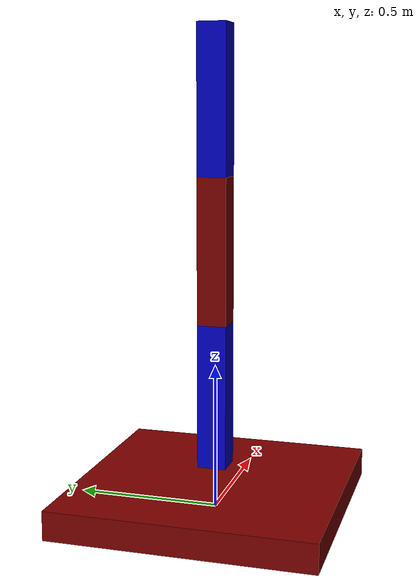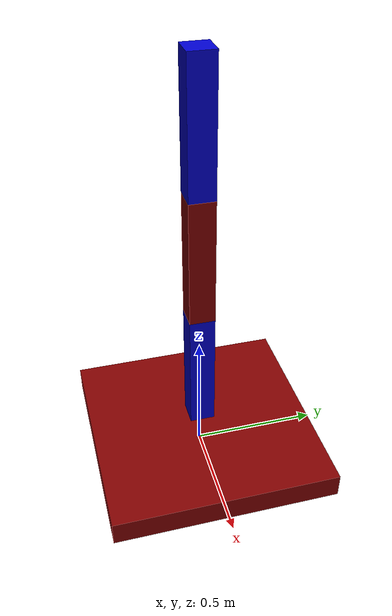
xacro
<?xml version="1.0" ?>

<robot xmlns:xacro="http://www.ros.org/wiki/xacro"
    name="arm3dof">

  <xacro:property name="base_width" value="0.9" />
  <xacro:property name="base_height" value="0.1" />
  <xacro:property name="base_mass" value="50" />

  <xacro:property name="link_width" value="0.1" />
  <xacro:property name="link_length" value="0.5" />
  <xacro:property name="link_mass" value="1.0" />

  <xacro:macro name="box_inertia" params="m w h d">
    <inertial>
      <origin xyz="0 0 ${h / 2}" rpy="0 0 0" />
      <mass value="${m}" />
      <inertia
      ixx="${(m/12) * (h*h + d*d)}" ixy="0.0" ixz="0.0"
      iyy="${(m/12) * (w*w + h*h)}" iyz="0.0"
      izz="${(m/12) * (w*w + d*d)}" />
    </inertial>
  </xacro:macro>

  <xacro:macro name="arm_link" params="link_name color_name color_rgb">

  <link name="${link_name}">
      <visual>
        <origin xyz="0 0 ${link_length / 2}" rpy="0 0 0" />
        <geometry>
          <box size="${link_width} ${link_width} ${link_length}" />
        </geometry>
        <material name="${color_name}">
          <color rgba="${color_rgb}" />
        </material>
      </visual>
      <collision>
        <origin xyz="0 0 ${link_length / 2}" rpy="0 0 0" />
        <geometry>
          <box size="${link_width} ${link_width} ${link_length - 0.05}" />
        </geometry>
      </collision>
      <xacro:box_inertia m="${link_mass}" w="${link_width}" d="${link_width}" h="${link_length}"/>
    </link>

    <gazebo reference="${link_name}">
      <visual>
        <material>
          <diffuse>${color_rgb}</diffuse>
        </material>
      </visual>
    </gazebo>

  </xacro:macro>

  <link name="world"/>

  <joint name="fix_to_ground" type="fixed">
    <parent link="world" />
    <child link="base_link" />
    <origin xyz="0 0 ${base_height / 2}" rpy="0 0 0" />
  </joint>

  <link name="base_link">
    <visual>
      <origin xyz="0 0 0" rpy="0 0 0" />
      <geometry>
        <box size="${base_width} ${base_width} ${base_height}" />
      </geometry>
      <material name="red">
        <color rgba="0.5 0 0 1" />
      </material>
    </visual>
    <collision>
      <origin xyz="0 0 0" rpy="0 0 0" />
      <geometry>
        <box size="${base_width} ${base_width} ${base_height}" />
      </geometry>
    </collision>
    <xacro:box_inertia m="${base_mass}" w="${base_width}" h="${base_height}" d="${base_width}"/>
  </link>

  <gazebo reference="base_link">
    <visual>
      <material>
        <diffuse>0.5 0 0 1</diffuse>
      </material>
    </visual>
  </gazebo>

  <joint name="j1_base_yaw" type="revolute">
    <parent link="base_link" />
    <child link="link_1" />
    <origin xyz="0 0 ${base_height}" rpy="0 0 0" />
    <axis xyz="0 0 1" />
    <limit lower="-3.14" upper="3.14" effort="100" velocity="10" />
    <dynamics damping="3.0" friction="1.0"/>
  </joint>

  <xacro:arm_link link_name="link_1" color_name="blue" color_rgb="0 0 0.8 1" />

  <joint name="j2_base_shoulder" type="revolute">
    <parent link="link_1" />
    <child link="link_2" />
    <origin xyz="0 0 ${link_length}" rpy="0 0 0" />
    <axis xyz="0 1 0" />
    <limit lower="-1.57" upper="1.57" effort="100" velocity="10" />
    <dynamics damping="3.0" friction="1.0"/>
  </joint>

  <xacro:arm_link link_name="link_2" color_name="red" color_rgb="0.5 0 0 1" />

  <joint name="j3_base_elbow" type="revolute">
    <parent link="link_2" />
    <child link="link_3" />
    <origin xyz="0 0 ${link_length}" rpy="0 0 0" />
    <axis xyz="0 1 0" />
    <limit lower="-1.57" upper="1.57" effort="100" velocity="10" />
    <dynamics damping="3.0" friction="1.0"/>
  </joint>

  <xacro:arm_link link_name="link_3" color_name="blue" color_rgb="0 0 0.8 1" />

  <gazebo>
    <plugin filename="gz-sim-joint-position-controller-system" name="gz::sim::systems::JointPositionController">
      <joint_name>j1_base_yaw</joint_name>
      <topic>cmd_pos_j1</topic>
      <p_gain>200</p_gain>
      <i_gain>1</i_gain>
      <d_gain>10</d_gain>
    </plugin>

    <plugin filename="gz-sim-joint-position-controller-system" name="gz::sim::systems::JointPositionController">
      <joint_name>j2_base_shoulder</joint_name>
      <topic>cmd_pos_j2</topic>
      <p_gain>1000</p_gain>
      <i_gain>1</i_gain>
      <d_gain>50</d_gain>
    </plugin>

    <plugin filename="gz-sim-joint-position-controller-system" name="gz::sim::systems::JointPositionController">
      <joint_name>j3_base_elbow</joint_name>
      <topic>cmd_pos_j3</topic>
      <p_gain>500</p_gain>
      <i_gain>1</i_gain>
      <d_gain>20</d_gain>
    </plugin>
  </gazebo>

</robot>
